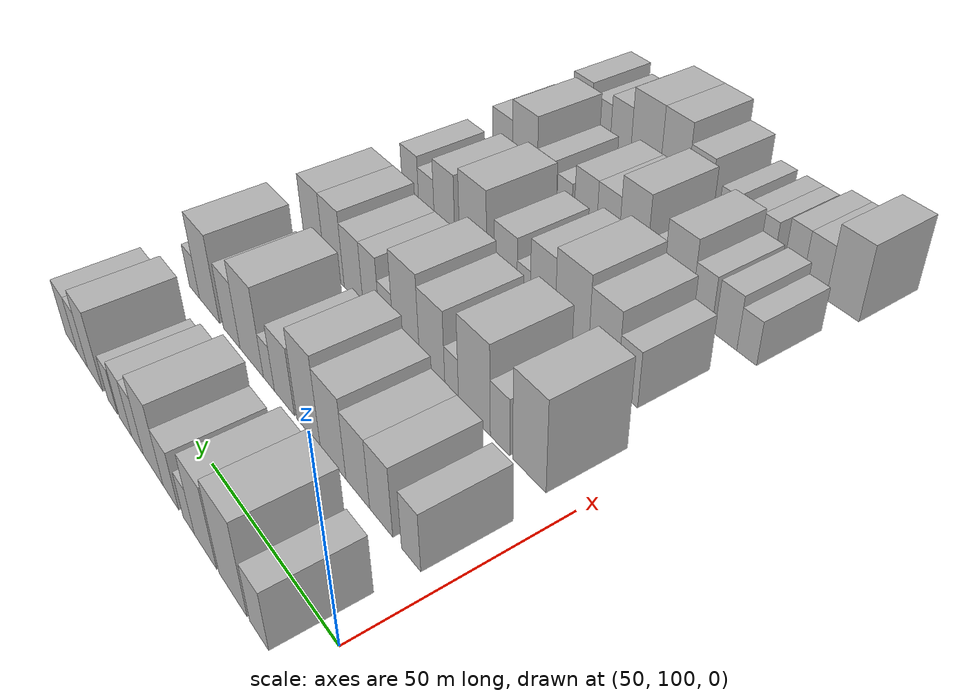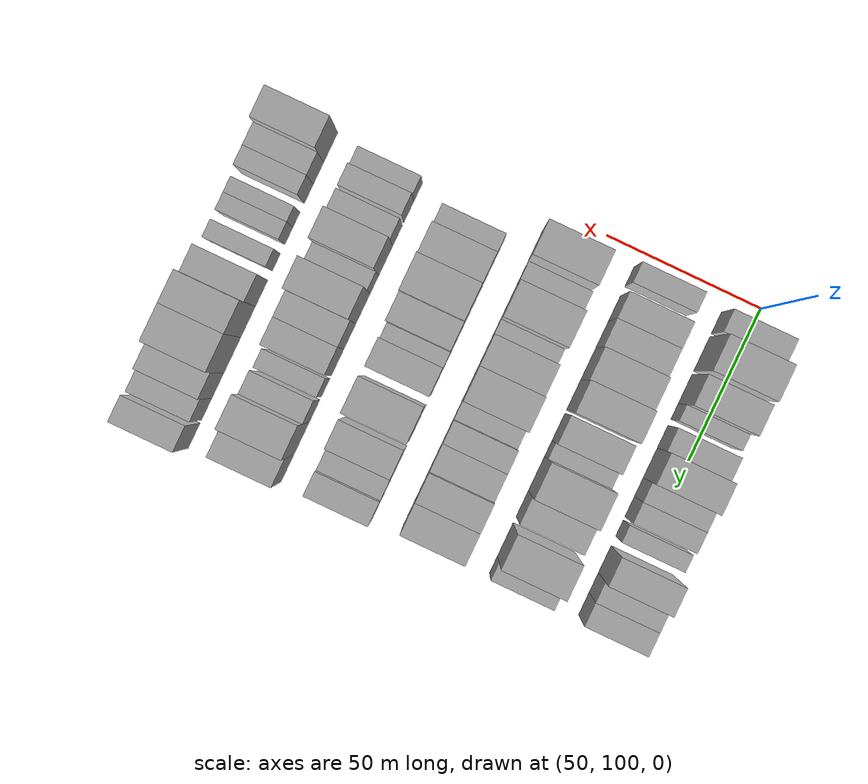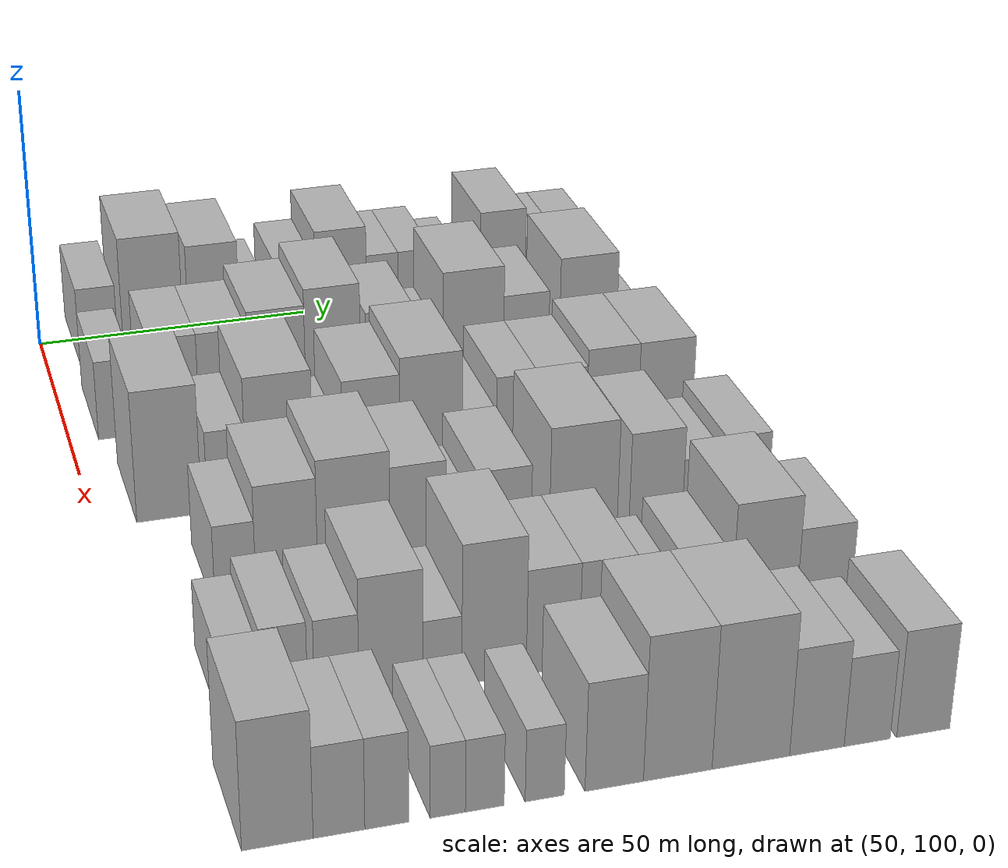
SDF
<sdf version="1.6">
 <world name="default">
  <model name="building_72">
   <static>1</static>
   <pose>50.0000 109.4942 0 0.000000 0.000000 0.000000</pose>
   <link name="link">
    <pose>0 0 7.50 0 0 0</pose>
    <collision name="collision"><geometry><box><size>20.0000 7.1047 15.0000</size></box></geometry></collision>
    <visual name="visual">
     <cast_shadows>0</cast_shadows>
     <geometry><box><size>20.0000 7.1047 15.0000</size></box></geometry>
     <material>
      <script>
       <uri>model://HANNAS_wall/materials/scripts</uri>
       <uri>model://HANNAS_wall/materials/textures</uri>
       <name>vrc/HANNAS_wall</name>
      </script>
     </material>
    </visual>
   </link>
  </model>
  <model name="building_73">
   <static>1</static>
   <pose>50.0000 119.6462 0 0.000000 0.000000 0.000000</pose>
   <link name="link">
    <pose>0 0 12.00 0 0 0</pose>
    <collision name="collision"><geometry><box><size>20.0000 11.1993 24.0000</size></box></geometry></collision>
    <visual name="visual">
     <cast_shadows>0</cast_shadows>
     <geometry><box><size>20.0000 11.1993 24.0000</size></box></geometry>
     <material>
      <script>
       <uri>model://HANNAS_wall/materials/scripts</uri>
       <uri>model://HANNAS_wall/materials/textures</uri>
       <name>vrc/HANNAS_wall</name>
      </script>
     </material>
    </visual>
   </link>
  </model>
  <model name="building_74">
   <static>1</static>
   <pose>50.0000 131.0173 0 0.000000 0.000000 0.000000</pose>
   <link name="link">
    <pose>0 0 10.50 0 0 0</pose>
    <collision name="collision"><geometry><box><size>20.0000 9.5428 21.0000</size></box></geometry></collision>
    <visual name="visual">
     <cast_shadows>0</cast_shadows>
     <geometry><box><size>20.0000 9.5428 21.0000</size></box></geometry>
     <material>
      <script>
       <uri>model://HANNAS_wall/materials/scripts</uri>
       <uri>model://HANNAS_wall/materials/textures</uri>
       <name>vrc/HANNAS_wall</name>
      </script>
     </material>
    </visual>
   </link>
  </model>
  <model name="building_75">
   <static>1</static>
   <pose>50.0000 138.3656 0 0.000000 0.000000 0.000000</pose>
   <link name="link">
    <pose>0 0 6.00 0 0 0</pose>
    <collision name="collision"><geometry><box><size>20.0000 5.1538 12.0000</size></box></geometry></collision>
    <visual name="visual">
     <cast_shadows>0</cast_shadows>
     <geometry><box><size>20.0000 5.1538 12.0000</size></box></geometry>
     <material>
      <script>
       <uri>model://HANNAS_wall/materials/scripts</uri>
       <uri>model://HANNAS_wall/materials/textures</uri>
       <name>vrc/HANNAS_wall</name>
      </script>
     </material>
    </visual>
   </link>
  </model>
  <model name="building_76">
   <static>1</static>
   <pose>50.0000 146.6119 0 0.000000 0.000000 0.000000</pose>
   <link name="link">
    <pose>0 0 7.50 0 0 0</pose>
    <collision name="collision"><geometry><box><size>20.0000 7.3389 15.0000</size></box></geometry></collision>
    <visual name="visual">
     <cast_shadows>0</cast_shadows>
     <geometry><box><size>20.0000 7.3389 15.0000</size></box></geometry>
     <material>
      <script>
       <uri>model://HANNAS_wall/materials/scripts</uri>
       <uri>model://HANNAS_wall/materials/textures</uri>
       <name>vrc/HANNAS_wall</name>
      </script>
     </material>
    </visual>
   </link>
  </model>
  <model name="building_77">
   <static>1</static>
   <pose>50.0000 155.1412 0 0.000000 0.000000 0.000000</pose>
   <link name="link">
    <pose>0 0 10.50 0 0 0</pose>
    <collision name="collision"><geometry><box><size>20.0000 9.7196 21.0000</size></box></geometry></collision>
    <visual name="visual">
     <cast_shadows>0</cast_shadows>
     <geometry><box><size>20.0000 9.7196 21.0000</size></box></geometry>
     <material>
      <script>
       <uri>model://HANNAS_wall/materials/scripts</uri>
       <uri>model://HANNAS_wall/materials/textures</uri>
       <name>vrc/HANNAS_wall</name>
      </script>
     </material>
    </visual>
   </link>
  </model>
  <model name="building_78">
   <static>1</static>
   <pose>50.0000 163.0527 0 0.000000 0.000000 0.000000</pose>
   <link name="link">
    <pose>0 0 7.50 0 0 0</pose>
    <collision name="collision"><geometry><box><size>20.0000 6.1034 15.0000</size></box></geometry></collision>
    <visual name="visual">
     <cast_shadows>0</cast_shadows>
     <geometry><box><size>20.0000 6.1034 15.0000</size></box></geometry>
     <material>
      <script>
       <uri>model://HANNAS_wall/materials/scripts</uri>
       <uri>model://HANNAS_wall/materials/textures</uri>
       <name>vrc/HANNAS_wall</name>
      </script>
     </material>
    </visual>
   </link>
  </model>
  <model name="building_79">
   <static>1</static>
   <pose>50.0000 169.4175 0 0.000000 0.000000 0.000000</pose>
   <link name="link">
    <pose>0 0 7.50 0 0 0</pose>
    <collision name="collision"><geometry><box><size>20.0000 6.6260 15.0000</size></box></geometry></collision>
    <visual name="visual">
     <cast_shadows>0</cast_shadows>
     <geometry><box><size>20.0000 6.6260 15.0000</size></box></geometry>
     <material>
      <script>
       <uri>model://HANNAS_wall/materials/scripts</uri>
       <uri>model://HANNAS_wall/materials/textures</uri>
       <name>vrc/HANNAS_wall</name>
      </script>
     </material>
    </visual>
   </link>
  </model>
  <model name="building_80">
   <static>1</static>
   <pose>50.0000 176.4331 0 0.000000 0.000000 0.000000</pose>
   <link name="link">
    <pose>0 0 6.00 0 0 0</pose>
    <collision name="collision"><geometry><box><size>20.0000 5.4053 12.0000</size></box></geometry></collision>
    <visual name="visual">
     <cast_shadows>0</cast_shadows>
     <geometry><box><size>20.0000 5.4053 12.0000</size></box></geometry>
     <material>
      <script>
       <uri>model://HANNAS_wall/materials/scripts</uri>
       <uri>model://HANNAS_wall/materials/textures</uri>
       <name>vrc/HANNAS_wall</name>
      </script>
     </material>
    </visual>
   </link>
  </model>
  <model name="building_81">
   <static>1</static>
   <pose>50.0000 186.5626 0 0.000000 0.000000 0.000000</pose>
   <link name="link">
    <pose>0 0 10.50 0 0 0</pose>
    <collision name="collision"><geometry><box><size>20.0000 8.8536 21.0000</size></box></geometry></collision>
    <visual name="visual">
     <cast_shadows>0</cast_shadows>
     <geometry><box><size>20.0000 8.8536 21.0000</size></box></geometry>
     <material>
      <script>
       <uri>model://HANNAS_wall/materials/scripts</uri>
       <uri>model://HANNAS_wall/materials/textures</uri>
       <name>vrc/HANNAS_wall</name>
      </script>
     </material>
    </visual>
   </link>
  </model>
  <model name="building_82">
   <static>1</static>
   <pose>50.0000 194.1696 0 0.000000 0.000000 0.000000</pose>
   <link name="link">
    <pose>0 0 7.50 0 0 0</pose>
    <collision name="collision"><geometry><box><size>20.0000 6.3604 15.0000</size></box></geometry></collision>
    <visual name="visual">
     <cast_shadows>0</cast_shadows>
     <geometry><box><size>20.0000 6.3604 15.0000</size></box></geometry>
     <material>
      <script>
       <uri>model://HANNAS_wall/materials/scripts</uri>
       <uri>model://HANNAS_wall/materials/textures</uri>
       <name>vrc/HANNAS_wall</name>
      </script>
     </material>
    </visual>
   </link>
  </model>
  <model name="building_83">
   <static>1</static>
   <pose>50.0000 201.0451 0 0.000000 0.000000 0.000000</pose>
   <link name="link">
    <pose>0 0 7.50 0 0 0</pose>
    <collision name="collision"><geometry><box><size>20.0000 7.3906 15.0000</size></box></geometry></collision>
    <visual name="visual">
     <cast_shadows>0</cast_shadows>
     <geometry><box><size>20.0000 7.3906 15.0000</size></box></geometry>
     <material>
      <script>
       <uri>model://HANNAS_wall/materials/scripts</uri>
       <uri>model://HANNAS_wall/materials/textures</uri>
       <name>vrc/HANNAS_wall</name>
      </script>
     </material>
    </visual>
   </link>
  </model>
  <model name="building_178">
   <static>1</static>
   <pose>79.0000 108.1862 0 0.000000 0.000000 0.000000</pose>
   <link name="link">
    <pose>0 0 7.50 0 0 0</pose>
    <collision name="collision"><geometry><box><size>20.0000 6.4750 15.0000</size></box></geometry></collision>
    <visual name="visual">
     <cast_shadows>0</cast_shadows>
     <geometry><box><size>20.0000 6.4750 15.0000</size></box></geometry>
     <material>
      <script>
       <uri>model://HANNAS_wall/materials/scripts</uri>
       <uri>model://HANNAS_wall/materials/textures</uri>
       <name>vrc/HANNAS_wall</name>
      </script>
     </material>
    </visual>
   </link>
  </model>
  <model name="building_179">
   <static>1</static>
   <pose>79.0000 118.5538 0 0.000000 0.000000 0.000000</pose>
   <link name="link">
    <pose>0 0 9.00 0 0 0</pose>
    <collision name="collision"><geometry><box><size>20.0000 8.2604 18.0000</size></box></geometry></collision>
    <visual name="visual">
     <cast_shadows>0</cast_shadows>
     <geometry><box><size>20.0000 8.2604 18.0000</size></box></geometry>
     <material>
      <script>
       <uri>model://HANNAS_wall/materials/scripts</uri>
       <uri>model://HANNAS_wall/materials/textures</uri>
       <name>vrc/HANNAS_wall</name>
      </script>
     </material>
    </visual>
   </link>
  </model>
  <model name="building_180">
   <static>1</static>
   <pose>79.0000 127.1318 0 0.000000 0.000000 0.000000</pose>
   <link name="link">
    <pose>0 0 9.00 0 0 0</pose>
    <collision name="collision"><geometry><box><size>20.0000 8.8956 18.0000</size></box></geometry></collision>
    <visual name="visual">
     <cast_shadows>0</cast_shadows>
     <geometry><box><size>20.0000 8.8956 18.0000</size></box></geometry>
     <material>
      <script>
       <uri>model://HANNAS_wall/materials/scripts</uri>
       <uri>model://HANNAS_wall/materials/textures</uri>
       <name>vrc/HANNAS_wall</name>
      </script>
     </material>
    </visual>
   </link>
  </model>
  <model name="building_181">
   <static>1</static>
   <pose>79.0000 136.6598 0 0.000000 0.000000 0.000000</pose>
   <link name="link">
    <pose>0 0 10.50 0 0 0</pose>
    <collision name="collision"><geometry><box><size>20.0000 10.1602 21.0000</size></box></geometry></collision>
    <visual name="visual">
     <cast_shadows>0</cast_shadows>
     <geometry><box><size>20.0000 10.1602 21.0000</size></box></geometry>
     <material>
      <script>
       <uri>model://HANNAS_wall/materials/scripts</uri>
       <uri>model://HANNAS_wall/materials/textures</uri>
       <name>vrc/HANNAS_wall</name>
      </script>
     </material>
    </visual>
   </link>
  </model>
  <model name="building_182">
   <static>1</static>
   <pose>79.0000 146.7085 0 0.000000 0.000000 0.000000</pose>
   <link name="link">
    <pose>0 0 12.00 0 0 0</pose>
    <collision name="collision"><geometry><box><size>20.0000 9.9371 24.0000</size></box></geometry></collision>
    <visual name="visual">
     <cast_shadows>0</cast_shadows>
     <geometry><box><size>20.0000 9.9371 24.0000</size></box></geometry>
     <material>
      <script>
       <uri>model://HANNAS_wall/materials/scripts</uri>
       <uri>model://HANNAS_wall/materials/textures</uri>
       <name>vrc/HANNAS_wall</name>
      </script>
     </material>
    </visual>
   </link>
  </model>
  <model name="building_183">
   <static>1</static>
   <pose>79.0000 157.1454 0 0.000000 0.000000 0.000000</pose>
   <link name="link">
    <pose>0 0 9.00 0 0 0</pose>
    <collision name="collision"><geometry><box><size>20.0000 8.9367 18.0000</size></box></geometry></collision>
    <visual name="visual">
     <cast_shadows>0</cast_shadows>
     <geometry><box><size>20.0000 8.9367 18.0000</size></box></geometry>
     <material>
      <script>
       <uri>model://HANNAS_wall/materials/scripts</uri>
       <uri>model://HANNAS_wall/materials/textures</uri>
       <name>vrc/HANNAS_wall</name>
      </script>
     </material>
    </visual>
   </link>
  </model>
  <model name="building_184">
   <static>1</static>
   <pose>79.0000 164.1491 0 0.000000 0.000000 0.000000</pose>
   <link name="link">
    <pose>0 0 6.00 0 0 0</pose>
    <collision name="collision"><geometry><box><size>20.0000 5.0707 12.0000</size></box></geometry></collision>
    <visual name="visual">
     <cast_shadows>0</cast_shadows>
     <geometry><box><size>20.0000 5.0707 12.0000</size></box></geometry>
     <material>
      <script>
       <uri>model://HANNAS_wall/materials/scripts</uri>
       <uri>model://HANNAS_wall/materials/textures</uri>
       <name>vrc/HANNAS_wall</name>
      </script>
     </material>
    </visual>
   </link>
  </model>
  <model name="building_185">
   <static>1</static>
   <pose>79.0000 172.3141 0 0.000000 0.000000 0.000000</pose>
   <link name="link">
    <pose>0 0 12.00 0 0 0</pose>
    <collision name="collision"><geometry><box><size>20.0000 11.2593 24.0000</size></box></geometry></collision>
    <visual name="visual">
     <cast_shadows>0</cast_shadows>
     <geometry><box><size>20.0000 11.2593 24.0000</size></box></geometry>
     <material>
      <script>
       <uri>model://HANNAS_wall/materials/scripts</uri>
       <uri>model://HANNAS_wall/materials/textures</uri>
       <name>vrc/HANNAS_wall</name>
      </script>
     </material>
    </visual>
   </link>
  </model>
  <model name="building_186">
   <static>1</static>
   <pose>79.0000 182.1634 0 0.000000 0.000000 0.000000</pose>
   <link name="link">
    <pose>0 0 9.00 0 0 0</pose>
    <collision name="collision"><geometry><box><size>20.0000 8.4394 18.0000</size></box></geometry></collision>
    <visual name="visual">
     <cast_shadows>0</cast_shadows>
     <geometry><box><size>20.0000 8.4394 18.0000</size></box></geometry>
     <material>
      <script>
       <uri>model://HANNAS_wall/materials/scripts</uri>
       <uri>model://HANNAS_wall/materials/textures</uri>
       <name>vrc/HANNAS_wall</name>
      </script>
     </material>
    </visual>
   </link>
  </model>
  <model name="building_187">
   <static>1</static>
   <pose>79.0000 193.7910 0 0.000000 0.000000 0.000000</pose>
   <link name="link">
    <pose>0 0 12.00 0 0 0</pose>
    <collision name="collision"><geometry><box><size>20.0000 10.8156 24.0000</size></box></geometry></collision>
    <visual name="visual">
     <cast_shadows>0</cast_shadows>
     <geometry><box><size>20.0000 10.8156 24.0000</size></box></geometry>
     <material>
      <script>
       <uri>model://HANNAS_wall/materials/scripts</uri>
       <uri>model://HANNAS_wall/materials/textures</uri>
       <name>vrc/HANNAS_wall</name>
      </script>
     </material>
    </visual>
   </link>
  </model>
  <model name="building_188">
   <static>1</static>
   <pose>79.0000 201.9959 0 0.000000 0.000000 0.000000</pose>
   <link name="link">
    <pose>0 0 6.00 0 0 0</pose>
    <collision name="collision"><geometry><box><size>20.0000 5.5943 12.0000</size></box></geometry></collision>
    <visual name="visual">
     <cast_shadows>0</cast_shadows>
     <geometry><box><size>20.0000 5.5943 12.0000</size></box></geometry>
     <material>
      <script>
       <uri>model://HANNAS_wall/materials/scripts</uri>
       <uri>model://HANNAS_wall/materials/textures</uri>
       <name>vrc/HANNAS_wall</name>
      </script>
     </material>
    </visual>
   </link>
  </model>
  <model name="building_285">
   <static>1</static>
   <pose>108.0000 112.1754 0 0.000000 0.000000 0.000000</pose>
   <link name="link">
    <pose>0 0 12.00 0 0 0</pose>
    <collision name="collision"><geometry><box><size>20.0000 10.7288 24.0000</size></box></geometry></collision>
    <visual name="visual">
     <cast_shadows>0</cast_shadows>
     <geometry><box><size>20.0000 10.7288 24.0000</size></box></geometry>
     <material>
      <script>
       <uri>model://HANNAS_wall/materials/scripts</uri>
       <uri>model://HANNAS_wall/materials/textures</uri>
       <name>vrc/HANNAS_wall</name>
      </script>
     </material>
    </visual>
   </link>
  </model>
  <model name="building_286">
   <static>1</static>
   <pose>108.0000 121.8168 0 0.000000 0.000000 0.000000</pose>
   <link name="link">
    <pose>0 0 7.50 0 0 0</pose>
    <collision name="collision"><geometry><box><size>20.0000 6.5539 15.0000</size></box></geometry></collision>
    <visual name="visual">
     <cast_shadows>0</cast_shadows>
     <geometry><box><size>20.0000 6.5539 15.0000</size></box></geometry>
     <material>
      <script>
       <uri>model://HANNAS_wall/materials/scripts</uri>
       <uri>model://HANNAS_wall/materials/textures</uri>
       <name>vrc/HANNAS_wall</name>
      </script>
     </material>
    </visual>
   </link>
  </model>
  <model name="building_287">
   <static>1</static>
   <pose>108.0000 130.7426 0 0.000000 0.000000 0.000000</pose>
   <link name="link">
    <pose>0 0 12.00 0 0 0</pose>
    <collision name="collision"><geometry><box><size>20.0000 11.2977 24.0000</size></box></geometry></collision>
    <visual name="visual">
     <cast_shadows>0</cast_shadows>
     <geometry><box><size>20.0000 11.2977 24.0000</size></box></geometry>
     <material>
      <script>
       <uri>model://HANNAS_wall/materials/scripts</uri>
       <uri>model://HANNAS_wall/materials/textures</uri>
       <name>vrc/HANNAS_wall</name>
      </script>
     </material>
    </visual>
   </link>
  </model>
  <model name="building_288">
   <static>1</static>
   <pose>108.0000 138.9171 0 0.000000 0.000000 0.000000</pose>
   <link name="link">
    <pose>0 0 6.00 0 0 0</pose>
    <collision name="collision"><geometry><box><size>20.0000 5.0513 12.0000</size></box></geometry></collision>
    <visual name="visual">
     <cast_shadows>0</cast_shadows>
     <geometry><box><size>20.0000 5.0513 12.0000</size></box></geometry>
     <material>
      <script>
       <uri>model://HANNAS_wall/materials/scripts</uri>
       <uri>model://HANNAS_wall/materials/textures</uri>
       <name>vrc/HANNAS_wall</name>
      </script>
     </material>
    </visual>
   </link>
  </model>
  <model name="building_289">
   <static>1</static>
   <pose>108.0000 146.3319 0 0.000000 0.000000 0.000000</pose>
   <link name="link">
    <pose>0 0 10.50 0 0 0</pose>
    <collision name="collision"><geometry><box><size>20.0000 9.7783 21.0000</size></box></geometry></collision>
    <visual name="visual">
     <cast_shadows>0</cast_shadows>
     <geometry><box><size>20.0000 9.7783 21.0000</size></box></geometry>
     <material>
      <script>
       <uri>model://HANNAS_wall/materials/scripts</uri>
       <uri>model://HANNAS_wall/materials/textures</uri>
       <name>vrc/HANNAS_wall</name>
      </script>
     </material>
    </visual>
   </link>
  </model>
  <model name="building_290">
   <static>1</static>
   <pose>108.0000 156.6023 0 0.000000 0.000000 0.000000</pose>
   <link name="link">
    <pose>0 0 12.00 0 0 0</pose>
    <collision name="collision"><geometry><box><size>20.0000 10.7624 24.0000</size></box></geometry></collision>
    <visual name="visual">
     <cast_shadows>0</cast_shadows>
     <geometry><box><size>20.0000 10.7624 24.0000</size></box></geometry>
     <material>
      <script>
       <uri>model://HANNAS_wall/materials/scripts</uri>
       <uri>model://HANNAS_wall/materials/textures</uri>
       <name>vrc/HANNAS_wall</name>
      </script>
     </material>
    </visual>
   </link>
  </model>
  <model name="building_291">
   <static>1</static>
   <pose>108.0000 164.9507 0 0.000000 0.000000 0.000000</pose>
   <link name="link">
    <pose>0 0 6.00 0 0 0</pose>
    <collision name="collision"><geometry><box><size>20.0000 5.9344 12.0000</size></box></geometry></collision>
    <visual name="visual">
     <cast_shadows>0</cast_shadows>
     <geometry><box><size>20.0000 5.9344 12.0000</size></box></geometry>
     <material>
      <script>
       <uri>model://HANNAS_wall/materials/scripts</uri>
       <uri>model://HANNAS_wall/materials/textures</uri>
       <name>vrc/HANNAS_wall</name>
      </script>
     </material>
    </visual>
   </link>
  </model>
  <model name="building_292">
   <static>1</static>
   <pose>108.0000 171.5423 0 0.000000 0.000000 0.000000</pose>
   <link name="link">
    <pose>0 0 9.00 0 0 0</pose>
    <collision name="collision"><geometry><box><size>20.0000 7.2489 18.0000</size></box></geometry></collision>
    <visual name="visual">
     <cast_shadows>0</cast_shadows>
     <geometry><box><size>20.0000 7.2489 18.0000</size></box></geometry>
     <material>
      <script>
       <uri>model://HANNAS_wall/materials/scripts</uri>
       <uri>model://HANNAS_wall/materials/textures</uri>
       <name>vrc/HANNAS_wall</name>
      </script>
     </material>
    </visual>
   </link>
  </model>
  <model name="building_293">
   <static>1</static>
   <pose>108.0000 179.5139 0 0.000000 0.000000 0.000000</pose>
   <link name="link">
    <pose>0 0 9.00 0 0 0</pose>
    <collision name="collision"><geometry><box><size>20.0000 8.6942 18.0000</size></box></geometry></collision>
    <visual name="visual">
     <cast_shadows>0</cast_shadows>
     <geometry><box><size>20.0000 8.6942 18.0000</size></box></geometry>
     <material>
      <script>
       <uri>model://HANNAS_wall/materials/scripts</uri>
       <uri>model://HANNAS_wall/materials/textures</uri>
       <name>vrc/HANNAS_wall</name>
      </script>
     </material>
    </visual>
   </link>
  </model>
  <model name="building_294">
   <static>1</static>
   <pose>108.0000 188.4600 0 0.000000 0.000000 0.000000</pose>
   <link name="link">
    <pose>0 0 10.50 0 0 0</pose>
    <collision name="collision"><geometry><box><size>20.0000 9.1979 21.0000</size></box></geometry></collision>
    <visual name="visual">
     <cast_shadows>0</cast_shadows>
     <geometry><box><size>20.0000 9.1979 21.0000</size></box></geometry>
     <material>
      <script>
       <uri>model://HANNAS_wall/materials/scripts</uri>
       <uri>model://HANNAS_wall/materials/textures</uri>
       <name>vrc/HANNAS_wall</name>
      </script>
     </material>
    </visual>
   </link>
  </model>
  <model name="building_295">
   <static>1</static>
   <pose>108.0000 197.9921 0 0.000000 0.000000 0.000000</pose>
   <link name="link">
    <pose>0 0 10.50 0 0 0</pose>
    <collision name="collision"><geometry><box><size>20.0000 9.8664 21.0000</size></box></geometry></collision>
    <visual name="visual">
     <cast_shadows>0</cast_shadows>
     <geometry><box><size>20.0000 9.8664 21.0000</size></box></geometry>
     <material>
      <script>
       <uri>model://HANNAS_wall/materials/scripts</uri>
       <uri>model://HANNAS_wall/materials/textures</uri>
       <name>vrc/HANNAS_wall</name>
      </script>
     </material>
    </visual>
   </link>
  </model>
  <model name="building_399">
   <static>1</static>
   <pose>137.0000 117.4442 0 0.000000 0.000000 0.000000</pose>
   <link name="link">
    <pose>0 0 7.50 0 0 0</pose>
    <collision name="collision"><geometry><box><size>20.0000 6.4629 15.0000</size></box></geometry></collision>
    <visual name="visual">
     <cast_shadows>0</cast_shadows>
     <geometry><box><size>20.0000 6.4629 15.0000</size></box></geometry>
     <material>
      <script>
       <uri>model://HANNAS_wall/materials/scripts</uri>
       <uri>model://HANNAS_wall/materials/textures</uri>
       <name>vrc/HANNAS_wall</name>
      </script>
     </material>
    </visual>
   </link>
  </model>
  <model name="building_400">
   <static>1</static>
   <pose>137.0000 125.5638 0 0.000000 0.000000 0.000000</pose>
   <link name="link">
    <pose>0 0 10.50 0 0 0</pose>
    <collision name="collision"><geometry><box><size>20.0000 9.7762 21.0000</size></box></geometry></collision>
    <visual name="visual">
     <cast_shadows>0</cast_shadows>
     <geometry><box><size>20.0000 9.7762 21.0000</size></box></geometry>
     <material>
      <script>
       <uri>model://HANNAS_wall/materials/scripts</uri>
       <uri>model://HANNAS_wall/materials/textures</uri>
       <name>vrc/HANNAS_wall</name>
      </script>
     </material>
    </visual>
   </link>
  </model>
  <model name="building_401">
   <static>1</static>
   <pose>137.0000 136.2402 0 0.000000 0.000000 0.000000</pose>
   <link name="link">
    <pose>0 0 12.00 0 0 0</pose>
    <collision name="collision"><geometry><box><size>20.0000 11.5767 24.0000</size></box></geometry></collision>
    <visual name="visual">
     <cast_shadows>0</cast_shadows>
     <geometry><box><size>20.0000 11.5767 24.0000</size></box></geometry>
     <material>
      <script>
       <uri>model://HANNAS_wall/materials/scripts</uri>
       <uri>model://HANNAS_wall/materials/textures</uri>
       <name>vrc/HANNAS_wall</name>
      </script>
     </material>
    </visual>
   </link>
  </model>
  <model name="building_402">
   <static>1</static>
   <pose>137.0000 146.5487 0 0.000000 0.000000 0.000000</pose>
   <link name="link">
    <pose>0 0 10.50 0 0 0</pose>
    <collision name="collision"><geometry><box><size>20.0000 9.0404 21.0000</size></box></geometry></collision>
    <visual name="visual">
     <cast_shadows>0</cast_shadows>
     <geometry><box><size>20.0000 9.0404 21.0000</size></box></geometry>
     <material>
      <script>
       <uri>model://HANNAS_wall/materials/scripts</uri>
       <uri>model://HANNAS_wall/materials/textures</uri>
       <name>vrc/HANNAS_wall</name>
      </script>
     </material>
    </visual>
   </link>
  </model>
  <model name="building_403">
   <static>1</static>
   <pose>137.0000 153.5601 0 0.000000 0.000000 0.000000</pose>
   <link name="link">
    <pose>0 0 6.00 0 0 0</pose>
    <collision name="collision"><geometry><box><size>20.0000 4.9823 12.0000</size></box></geometry></collision>
    <visual name="visual">
     <cast_shadows>0</cast_shadows>
     <geometry><box><size>20.0000 4.9823 12.0000</size></box></geometry>
     <material>
      <script>
       <uri>model://HANNAS_wall/materials/scripts</uri>
       <uri>model://HANNAS_wall/materials/textures</uri>
       <name>vrc/HANNAS_wall</name>
      </script>
     </material>
    </visual>
   </link>
  </model>
  <model name="building_404">
   <static>1</static>
   <pose>137.0000 160.5116 0 0.000000 0.000000 0.000000</pose>
   <link name="link">
    <pose>0 0 9.00 0 0 0</pose>
    <collision name="collision"><geometry><box><size>20.0000 8.9208 18.0000</size></box></geometry></collision>
    <visual name="visual">
     <cast_shadows>0</cast_shadows>
     <geometry><box><size>20.0000 8.9208 18.0000</size></box></geometry>
     <material>
      <script>
       <uri>model://HANNAS_wall/materials/scripts</uri>
       <uri>model://HANNAS_wall/materials/textures</uri>
       <name>vrc/HANNAS_wall</name>
      </script>
     </material>
    </visual>
   </link>
  </model>
  <model name="building_405">
   <static>1</static>
   <pose>137.0000 173.6350 0 0.000000 0.000000 0.000000</pose>
   <link name="link">
    <pose>0 0 12.00 0 0 0</pose>
    <collision name="collision"><geometry><box><size>20.0000 11.3258 24.0000</size></box></geometry></collision>
    <visual name="visual">
     <cast_shadows>0</cast_shadows>
     <geometry><box><size>20.0000 11.3258 24.0000</size></box></geometry>
     <material>
      <script>
       <uri>model://HANNAS_wall/materials/scripts</uri>
       <uri>model://HANNAS_wall/materials/textures</uri>
       <name>vrc/HANNAS_wall</name>
      </script>
     </material>
    </visual>
   </link>
  </model>
  <model name="building_406">
   <static>1</static>
   <pose>137.0000 185.8130 0 0.000000 0.000000 0.000000</pose>
   <link name="link">
    <pose>0 0 10.50 0 0 0</pose>
    <collision name="collision"><geometry><box><size>20.0000 9.0302 21.0000</size></box></geometry></collision>
    <visual name="visual">
     <cast_shadows>0</cast_shadows>
     <geometry><box><size>20.0000 9.0302 21.0000</size></box></geometry>
     <material>
      <script>
       <uri>model://HANNAS_wall/materials/scripts</uri>
       <uri>model://HANNAS_wall/materials/textures</uri>
       <name>vrc/HANNAS_wall</name>
      </script>
     </material>
    </visual>
   </link>
  </model>
  <model name="building_407">
   <static>1</static>
   <pose>137.0000 193.8428 0 0.000000 0.000000 0.000000</pose>
   <link name="link">
    <pose>0 0 7.50 0 0 0</pose>
    <collision name="collision"><geometry><box><size>20.0000 7.0293 15.0000</size></box></geometry></collision>
    <visual name="visual">
     <cast_shadows>0</cast_shadows>
     <geometry><box><size>20.0000 7.0293 15.0000</size></box></geometry>
     <material>
      <script>
       <uri>model://HANNAS_wall/materials/scripts</uri>
       <uri>model://HANNAS_wall/materials/textures</uri>
       <name>vrc/HANNAS_wall</name>
      </script>
     </material>
    </visual>
   </link>
  </model>
  <model name="building_408">
   <static>1</static>
   <pose>137.0000 201.1905 0 0.000000 0.000000 0.000000</pose>
   <link name="link">
    <pose>0 0 9.00 0 0 0</pose>
    <collision name="collision"><geometry><box><size>20.0000 7.6662 18.0000</size></box></geometry></collision>
    <visual name="visual">
     <cast_shadows>0</cast_shadows>
     <geometry><box><size>20.0000 7.6662 18.0000</size></box></geometry>
     <material>
      <script>
       <uri>model://HANNAS_wall/materials/scripts</uri>
       <uri>model://HANNAS_wall/materials/textures</uri>
       <name>vrc/HANNAS_wall</name>
      </script>
     </material>
    </visual>
   </link>
  </model>
  <model name="building_514">
   <static>1</static>
   <pose>166.0000 112.3154 0 0.000000 0.000000 0.000000</pose>
   <link name="link">
    <pose>0 0 6.00 0 0 0</pose>
    <collision name="collision"><geometry><box><size>20.0000 5.9537 12.0000</size></box></geometry></collision>
    <visual name="visual">
     <cast_shadows>0</cast_shadows>
     <geometry><box><size>20.0000 5.9537 12.0000</size></box></geometry>
     <material>
      <script>
       <uri>model://HANNAS_wall/materials/scripts</uri>
       <uri>model://HANNAS_wall/materials/textures</uri>
       <name>vrc/HANNAS_wall</name>
      </script>
     </material>
    </visual>
   </link>
  </model>
  <model name="building_515">
   <static>1</static>
   <pose>166.0000 118.7464 0 0.000000 0.000000 0.000000</pose>
   <link name="link">
    <pose>0 0 7.50 0 0 0</pose>
    <collision name="collision"><geometry><box><size>20.0000 6.9082 15.0000</size></box></geometry></collision>
    <visual name="visual">
     <cast_shadows>0</cast_shadows>
     <geometry><box><size>20.0000 6.9082 15.0000</size></box></geometry>
     <material>
      <script>
       <uri>model://HANNAS_wall/materials/scripts</uri>
       <uri>model://HANNAS_wall/materials/textures</uri>
       <name>vrc/HANNAS_wall</name>
      </script>
     </material>
    </visual>
   </link>
  </model>
  <model name="building_516">
   <static>1</static>
   <pose>166.0000 126.5125 0 0.000000 0.000000 0.000000</pose>
   <link name="link">
    <pose>0 0 7.50 0 0 0</pose>
    <collision name="collision"><geometry><box><size>20.0000 6.6241 15.0000</size></box></geometry></collision>
    <visual name="visual">
     <cast_shadows>0</cast_shadows>
     <geometry><box><size>20.0000 6.6241 15.0000</size></box></geometry>
     <material>
      <script>
       <uri>model://HANNAS_wall/materials/scripts</uri>
       <uri>model://HANNAS_wall/materials/textures</uri>
       <name>vrc/HANNAS_wall</name>
      </script>
     </material>
    </visual>
   </link>
  </model>
  <model name="building_517">
   <static>1</static>
   <pose>166.0000 134.6546 0 0.000000 0.000000 0.000000</pose>
   <link name="link">
    <pose>0 0 10.50 0 0 0</pose>
    <collision name="collision"><geometry><box><size>20.0000 9.6601 21.0000</size></box></geometry></collision>
    <visual name="visual">
     <cast_shadows>0</cast_shadows>
     <geometry><box><size>20.0000 9.6601 21.0000</size></box></geometry>
     <material>
      <script>
       <uri>model://HANNAS_wall/materials/scripts</uri>
       <uri>model://HANNAS_wall/materials/textures</uri>
       <name>vrc/HANNAS_wall</name>
      </script>
     </material>
    </visual>
   </link>
  </model>
  <model name="building_518">
   <static>1</static>
   <pose>166.0000 142.4083 0 0.000000 0.000000 0.000000</pose>
   <link name="link">
    <pose>0 0 6.00 0 0 0</pose>
    <collision name="collision"><geometry><box><size>20.0000 5.8473 12.0000</size></box></geometry></collision>
    <visual name="visual">
     <cast_shadows>0</cast_shadows>
     <geometry><box><size>20.0000 5.8473 12.0000</size></box></geometry>
     <material>
      <script>
       <uri>model://HANNAS_wall/materials/scripts</uri>
       <uri>model://HANNAS_wall/materials/textures</uri>
       <name>vrc/HANNAS_wall</name>
      </script>
     </material>
    </visual>
   </link>
  </model>
  <model name="building_519">
   <static>1</static>
   <pose>166.0000 150.2780 0 0.000000 0.000000 0.000000</pose>
   <link name="link">
    <pose>0 0 12.00 0 0 0</pose>
    <collision name="collision"><geometry><box><size>20.0000 9.8921 24.0000</size></box></geometry></collision>
    <visual name="visual">
     <cast_shadows>0</cast_shadows>
     <geometry><box><size>20.0000 9.8921 24.0000</size></box></geometry>
     <material>
      <script>
       <uri>model://HANNAS_wall/materials/scripts</uri>
       <uri>model://HANNAS_wall/materials/textures</uri>
       <name>vrc/HANNAS_wall</name>
      </script>
     </material>
    </visual>
   </link>
  </model>
  <model name="building_520">
   <static>1</static>
   <pose>166.0000 159.3437 0 0.000000 0.000000 0.000000</pose>
   <link name="link">
    <pose>0 0 9.00 0 0 0</pose>
    <collision name="collision"><geometry><box><size>20.0000 8.2393 18.0000</size></box></geometry></collision>
    <visual name="visual">
     <cast_shadows>0</cast_shadows>
     <geometry><box><size>20.0000 8.2393 18.0000</size></box></geometry>
     <material>
      <script>
       <uri>model://HANNAS_wall/materials/scripts</uri>
       <uri>model://HANNAS_wall/materials/textures</uri>
       <name>vrc/HANNAS_wall</name>
      </script>
     </material>
    </visual>
   </link>
  </model>
  <model name="building_521">
   <static>1</static>
   <pose>166.0000 167.7708 0 0.000000 0.000000 0.000000</pose>
   <link name="link">
    <pose>0 0 9.00 0 0 0</pose>
    <collision name="collision"><geometry><box><size>20.0000 8.6150 18.0000</size></box></geometry></collision>
    <visual name="visual">
     <cast_shadows>0</cast_shadows>
     <geometry><box><size>20.0000 8.6150 18.0000</size></box></geometry>
     <material>
      <script>
       <uri>model://HANNAS_wall/materials/scripts</uri>
       <uri>model://HANNAS_wall/materials/textures</uri>
       <name>vrc/HANNAS_wall</name>
      </script>
     </material>
    </visual>
   </link>
  </model>
  <model name="building_522">
   <static>1</static>
   <pose>166.0000 176.0458 0 0.000000 0.000000 0.000000</pose>
   <link name="link">
    <pose>0 0 6.00 0 0 0</pose>
    <collision name="collision"><geometry><box><size>20.0000 5.9350 12.0000</size></box></geometry></collision>
    <visual name="visual">
     <cast_shadows>0</cast_shadows>
     <geometry><box><size>20.0000 5.9350 12.0000</size></box></geometry>
     <material>
      <script>
       <uri>model://HANNAS_wall/materials/scripts</uri>
       <uri>model://HANNAS_wall/materials/textures</uri>
       <name>vrc/HANNAS_wall</name>
      </script>
     </material>
    </visual>
   </link>
  </model>
  <model name="building_523">
   <static>1</static>
   <pose>166.0000 183.6597 0 0.000000 0.000000 0.000000</pose>
   <link name="link">
    <pose>0 0 7.50 0 0 0</pose>
    <collision name="collision"><geometry><box><size>20.0000 7.2928 15.0000</size></box></geometry></collision>
    <visual name="visual">
     <cast_shadows>0</cast_shadows>
     <geometry><box><size>20.0000 7.2928 15.0000</size></box></geometry>
     <material>
      <script>
       <uri>model://HANNAS_wall/materials/scripts</uri>
       <uri>model://HANNAS_wall/materials/textures</uri>
       <name>vrc/HANNAS_wall</name>
      </script>
     </material>
    </visual>
   </link>
  </model>
  <model name="building_524">
   <static>1</static>
   <pose>166.0000 192.5738 0 0.000000 0.000000 0.000000</pose>
   <link name="link">
    <pose>0 0 12.00 0 0 0</pose>
    <collision name="collision"><geometry><box><size>20.0000 10.5354 24.0000</size></box></geometry></collision>
    <visual name="visual">
     <cast_shadows>0</cast_shadows>
     <geometry><box><size>20.0000 10.5354 24.0000</size></box></geometry>
     <material>
      <script>
       <uri>model://HANNAS_wall/materials/scripts</uri>
       <uri>model://HANNAS_wall/materials/textures</uri>
       <name>vrc/HANNAS_wall</name>
      </script>
     </material>
    </visual>
   </link>
  </model>
  <model name="building_525">
   <static>1</static>
   <pose>166.0000 202.3110 0 0.000000 0.000000 0.000000</pose>
   <link name="link">
    <pose>0 0 9.00 0 0 0</pose>
    <collision name="collision"><geometry><box><size>20.0000 8.9390 18.0000</size></box></geometry></collision>
    <visual name="visual">
     <cast_shadows>0</cast_shadows>
     <geometry><box><size>20.0000 8.9390 18.0000</size></box></geometry>
     <material>
      <script>
       <uri>model://HANNAS_wall/materials/scripts</uri>
       <uri>model://HANNAS_wall/materials/textures</uri>
       <name>vrc/HANNAS_wall</name>
      </script>
     </material>
    </visual>
   </link>
  </model>
  <model name="building_635">
   <static>1</static>
   <pose>195.0000 111.3965 0 0.000000 0.000000 0.000000</pose>
   <link name="link">
    <pose>0 0 10.50 0 0 0</pose>
    <collision name="collision"><geometry><box><size>20.0000 9.7901 21.0000</size></box></geometry></collision>
    <visual name="visual">
     <cast_shadows>0</cast_shadows>
     <geometry><box><size>20.0000 9.7901 21.0000</size></box></geometry>
     <material>
      <script>
       <uri>model://HANNAS_wall/materials/scripts</uri>
       <uri>model://HANNAS_wall/materials/textures</uri>
       <name>vrc/HANNAS_wall</name>
      </script>
     </material>
    </visual>
   </link>
  </model>
  <model name="building_636">
   <static>1</static>
   <pose>195.0000 119.8667 0 0.000000 0.000000 0.000000</pose>
   <link name="link">
    <pose>0 0 7.50 0 0 0</pose>
    <collision name="collision"><geometry><box><size>20.0000 7.1503 15.0000</size></box></geometry></collision>
    <visual name="visual">
     <cast_shadows>0</cast_shadows>
     <geometry><box><size>20.0000 7.1503 15.0000</size></box></geometry>
     <material>
      <script>
       <uri>model://HANNAS_wall/materials/scripts</uri>
       <uri>model://HANNAS_wall/materials/textures</uri>
       <name>vrc/HANNAS_wall</name>
      </script>
     </material>
    </visual>
   </link>
  </model>
  <model name="building_637">
   <static>1</static>
   <pose>195.0000 126.5099 0 0.000000 0.000000 0.000000</pose>
   <link name="link">
    <pose>0 0 7.50 0 0 0</pose>
    <collision name="collision"><geometry><box><size>20.0000 6.1362 15.0000</size></box></geometry></collision>
    <visual name="visual">
     <cast_shadows>0</cast_shadows>
     <geometry><box><size>20.0000 6.1362 15.0000</size></box></geometry>
     <material>
      <script>
       <uri>model://HANNAS_wall/materials/scripts</uri>
       <uri>model://HANNAS_wall/materials/textures</uri>
       <name>vrc/HANNAS_wall</name>
      </script>
     </material>
    </visual>
   </link>
  </model>
  <model name="building_638">
   <static>1</static>
   <pose>195.0000 135.0568 0 0.000000 0.000000 0.000000</pose>
   <link name="link">
    <pose>0 0 6.00 0 0 0</pose>
    <collision name="collision"><geometry><box><size>20.0000 4.9576 12.0000</size></box></geometry></collision>
    <visual name="visual">
     <cast_shadows>0</cast_shadows>
     <geometry><box><size>20.0000 4.9576 12.0000</size></box></geometry>
     <material>
      <script>
       <uri>model://HANNAS_wall/materials/scripts</uri>
       <uri>model://HANNAS_wall/materials/textures</uri>
       <name>vrc/HANNAS_wall</name>
      </script>
     </material>
    </visual>
   </link>
  </model>
  <model name="building_639">
   <static>1</static>
   <pose>195.0000 140.2954 0 0.000000 0.000000 0.000000</pose>
   <link name="link">
    <pose>0 0 6.00 0 0 0</pose>
    <collision name="collision"><geometry><box><size>20.0000 5.5195 12.0000</size></box></geometry></collision>
    <visual name="visual">
     <cast_shadows>0</cast_shadows>
     <geometry><box><size>20.0000 5.5195 12.0000</size></box></geometry>
     <material>
      <script>
       <uri>model://HANNAS_wall/materials/scripts</uri>
       <uri>model://HANNAS_wall/materials/textures</uri>
       <name>vrc/HANNAS_wall</name>
      </script>
     </material>
    </visual>
   </link>
  </model>
  <model name="building_640">
   <static>1</static>
   <pose>195.0000 148.8684 0 0.000000 0.000000 0.000000</pose>
   <link name="link">
    <pose>0 0 6.00 0 0 0</pose>
    <collision name="collision"><geometry><box><size>20.0000 5.6266 12.0000</size></box></geometry></collision>
    <visual name="visual">
     <cast_shadows>0</cast_shadows>
     <geometry><box><size>20.0000 5.6266 12.0000</size></box></geometry>
     <material>
      <script>
       <uri>model://HANNAS_wall/materials/scripts</uri>
       <uri>model://HANNAS_wall/materials/textures</uri>
       <name>vrc/HANNAS_wall</name>
      </script>
     </material>
    </visual>
   </link>
  </model>
  <model name="building_641">
   <static>1</static>
   <pose>195.0000 158.9463 0 0.000000 0.000000 0.000000</pose>
   <link name="link">
    <pose>0 0 9.00 0 0 0</pose>
    <collision name="collision"><geometry><box><size>20.0000 8.5291 18.0000</size></box></geometry></collision>
    <visual name="visual">
     <cast_shadows>0</cast_shadows>
     <geometry><box><size>20.0000 8.5291 18.0000</size></box></geometry>
     <material>
      <script>
       <uri>model://HANNAS_wall/materials/scripts</uri>
       <uri>model://HANNAS_wall/materials/textures</uri>
       <name>vrc/HANNAS_wall</name>
      </script>
     </material>
    </visual>
   </link>
  </model>
  <model name="building_642">
   <static>1</static>
   <pose>195.0000 168.2799 0 0.000000 0.000000 0.000000</pose>
   <link name="link">
    <pose>0 0 12.00 0 0 0</pose>
    <collision name="collision"><geometry><box><size>20.0000 10.1381 24.0000</size></box></geometry></collision>
    <visual name="visual">
     <cast_shadows>0</cast_shadows>
     <geometry><box><size>20.0000 10.1381 24.0000</size></box></geometry>
     <material>
      <script>
       <uri>model://HANNAS_wall/materials/scripts</uri>
       <uri>model://HANNAS_wall/materials/textures</uri>
       <name>vrc/HANNAS_wall</name>
      </script>
     </material>
    </visual>
   </link>
  </model>
  <model name="building_643">
   <static>1</static>
   <pose>195.0000 179.1593 0 0.000000 0.000000 0.000000</pose>
   <link name="link">
    <pose>0 0 12.00 0 0 0</pose>
    <collision name="collision"><geometry><box><size>20.0000 11.6206 24.0000</size></box></geometry></collision>
    <visual name="visual">
     <cast_shadows>0</cast_shadows>
     <geometry><box><size>20.0000 11.6206 24.0000</size></box></geometry>
     <material>
      <script>
       <uri>model://HANNAS_wall/materials/scripts</uri>
       <uri>model://HANNAS_wall/materials/textures</uri>
       <name>vrc/HANNAS_wall</name>
      </script>
     </material>
    </visual>
   </link>
  </model>
  <model name="building_644">
   <static>1</static>
   <pose>195.0000 189.1142 0 0.000000 0.000000 0.000000</pose>
   <link name="link">
    <pose>0 0 9.00 0 0 0</pose>
    <collision name="collision"><geometry><box><size>20.0000 8.2893 18.0000</size></box></geometry></collision>
    <visual name="visual">
     <cast_shadows>0</cast_shadows>
     <geometry><box><size>20.0000 8.2893 18.0000</size></box></geometry>
     <material>
      <script>
       <uri>model://HANNAS_wall/materials/scripts</uri>
       <uri>model://HANNAS_wall/materials/textures</uri>
       <name>vrc/HANNAS_wall</name>
      </script>
     </material>
    </visual>
   </link>
  </model>
  <model name="building_645">
   <static>1</static>
   <pose>195.0000 196.8033 0 0.000000 0.000000 0.000000</pose>
   <link name="link">
    <pose>0 0 7.50 0 0 0</pose>
    <collision name="collision"><geometry><box><size>20.0000 7.0889 15.0000</size></box></geometry></collision>
    <visual name="visual">
     <cast_shadows>0</cast_shadows>
     <geometry><box><size>20.0000 7.0889 15.0000</size></box></geometry>
     <material>
      <script>
       <uri>model://HANNAS_wall/materials/scripts</uri>
       <uri>model://HANNAS_wall/materials/textures</uri>
       <name>vrc/HANNAS_wall</name>
      </script>
     </material>
    </visual>
   </link>
  </model>
  <model name="building_646">
   <static>1</static>
   <pose>195.0000 205.4585 0 0.000000 0.000000 0.000000</pose>
   <link name="link">
    <pose>0 0 9.00 0 0 0</pose>
    <collision name="collision"><geometry><box><size>20.0000 8.2214 18.0000</size></box></geometry></collision>
    <visual name="visual">
     <cast_shadows>0</cast_shadows>
     <geometry><box><size>20.0000 8.2214 18.0000</size></box></geometry>
     <material>
      <script>
       <uri>model://HANNAS_wall/materials/scripts</uri>
       <uri>model://HANNAS_wall/materials/textures</uri>
       <name>vrc/HANNAS_wall</name>
      </script>
     </material>
    </visual>
   </link>
  </model>
 </world>
</sdf>
